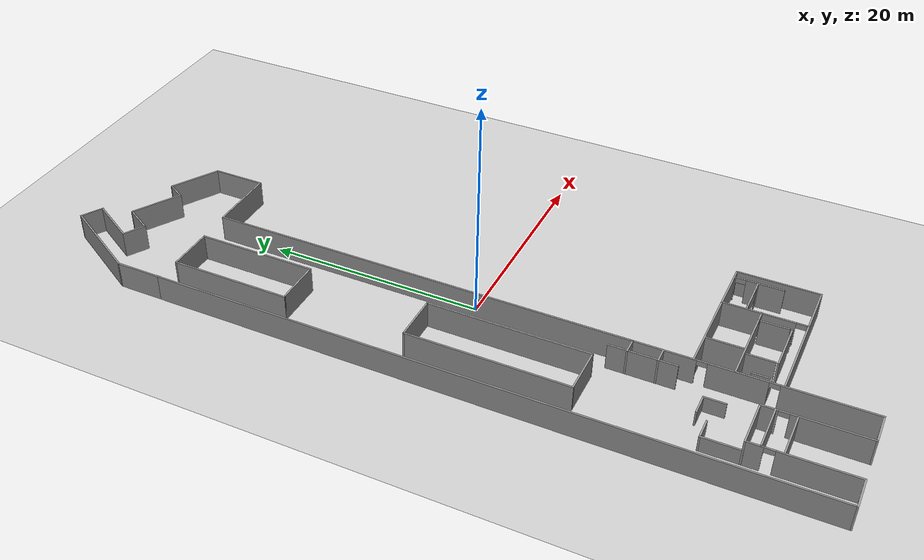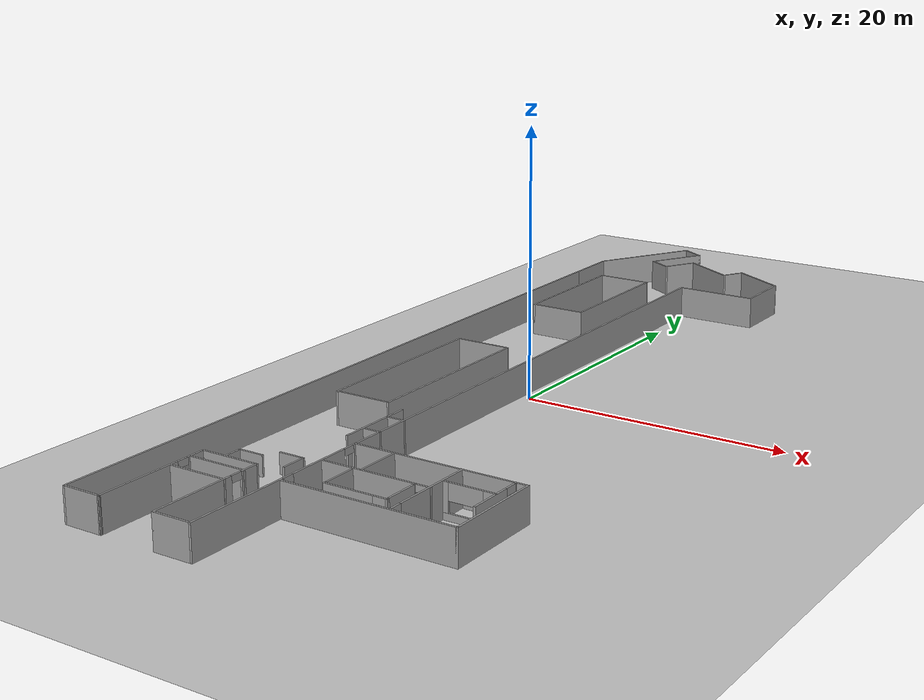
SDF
<sdf version="1.6">
 <world name="default">
  <gravity>0 0 -9.8</gravity>
  <magnetic_field>6e-06 2.3e-05 -4.2e-05</magnetic_field>
  <atmosphere type="adiabatic"/>
  <physics name="default_physics" default="0" type="ode">
   <max_step_size>0.001</max_step_size>
   <real_time_factor>1</real_time_factor>
   <real_time_update_rate>1000</real_time_update_rate>
  </physics>
  <scene><ambient>0.4 0.4 0.4 1</ambient><background>0.7 0.7 0.7 1</background><shadows>1</shadows></scene>
  <spherical_coordinates>
   <surface_model>EARTH_WGS84</surface_model>
   <latitude_deg>0</latitude_deg>
   <longitude_deg>0</longitude_deg>
   <elevation>0</elevation>
   <heading_deg>0</heading_deg>
  </spherical_coordinates>
  <include><uri>model://sun</uri></include>
  <include><uri>model://ground_plane</uri></include>
  <include><uri>model://fei_k5</uri><pose>0.621469 1.46181 0 0 -0 0</pose></include>
  <plugin name="auto_sliding_door_1" filename="libauto_sliding_door.so"><door_name>door1</door_name></plugin>
  <plugin name="auto_sliding_door_2" filename="libauto_sliding_door.so"><door_name>door2</door_name></plugin>
 </world>
</sdf>
